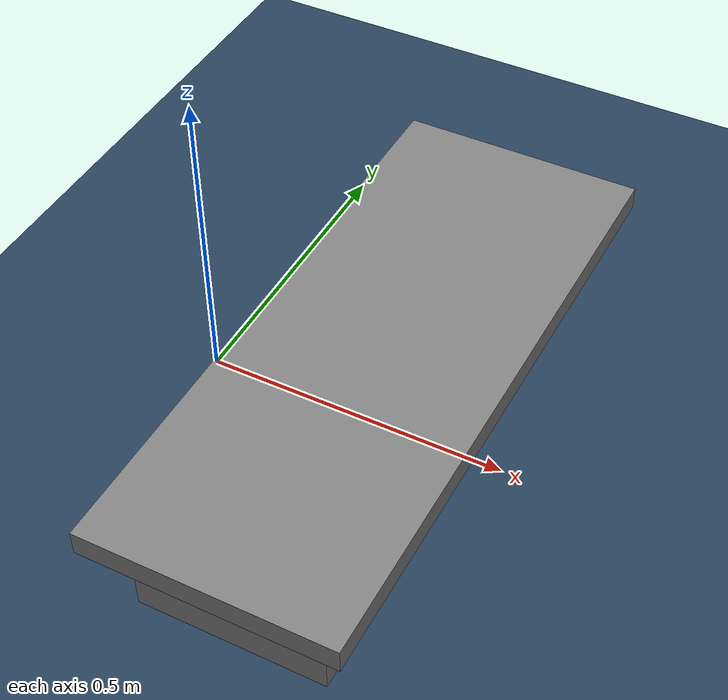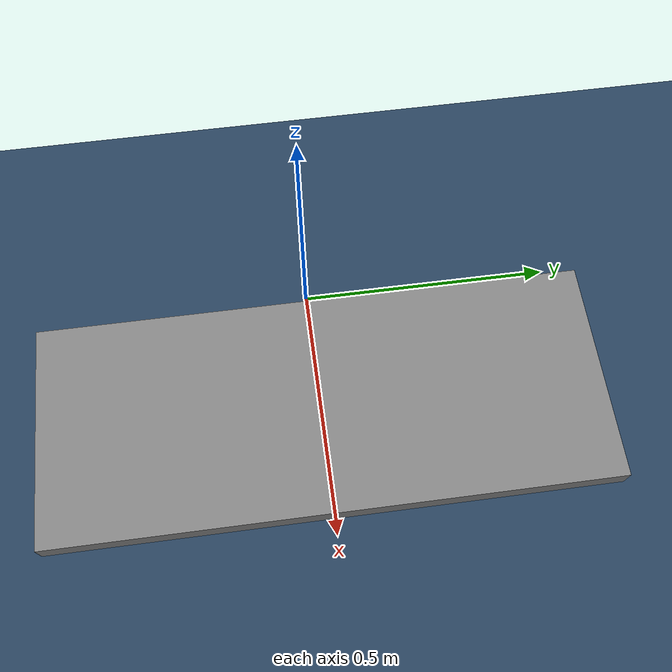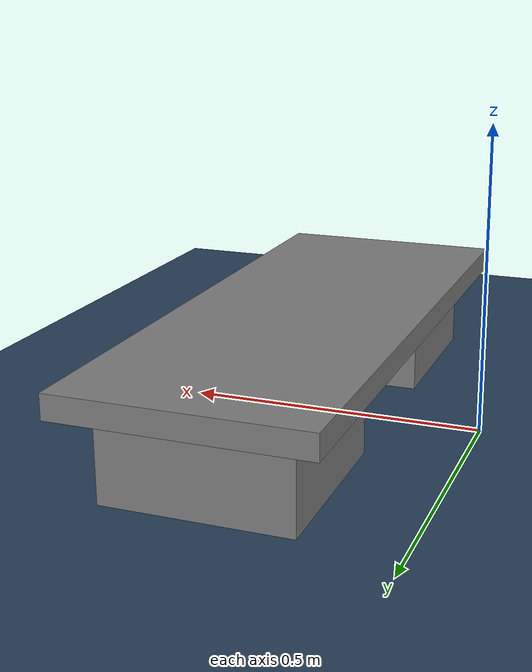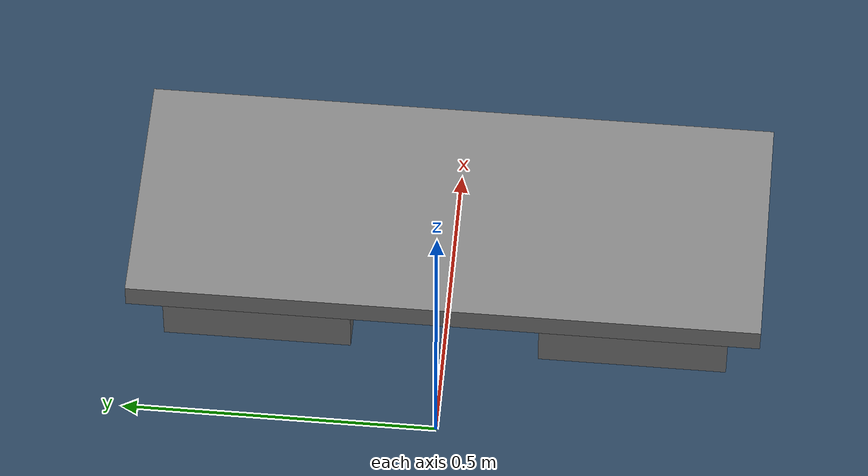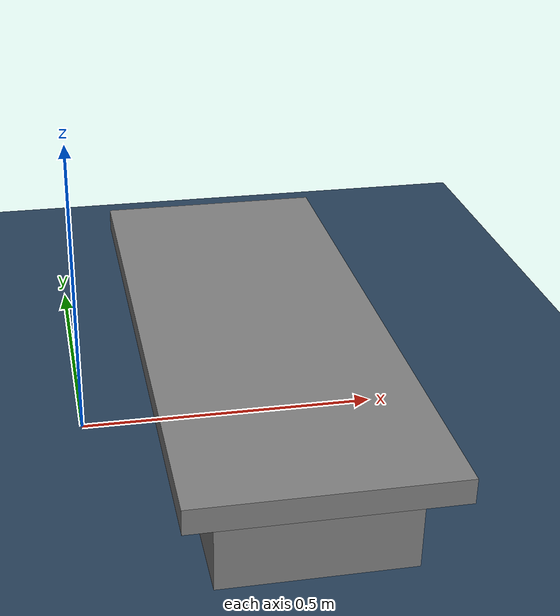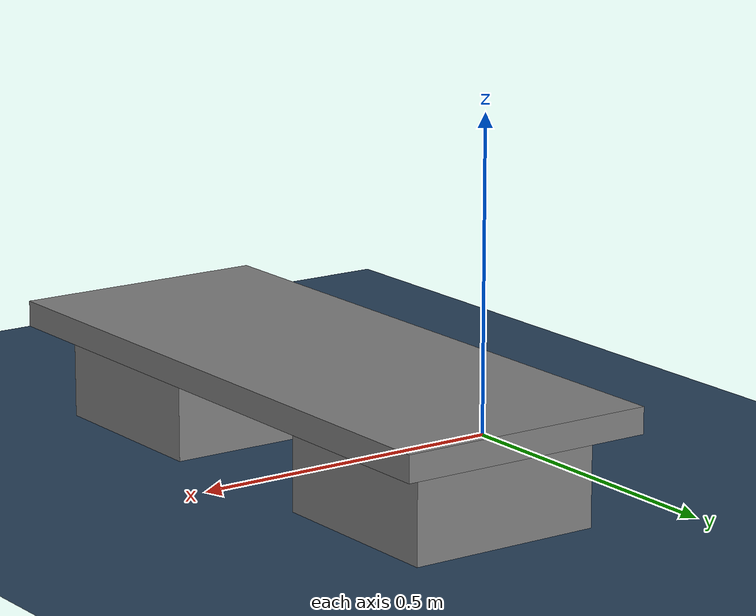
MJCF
<mujoco model="arena">
  <visual>
    <global azimuth="180" elevation="-22.5" />
  </visual>
  <asset>
    <texture name="skybox" type="skybox" builtin="gradient" rgb1=".4 .6 .8" rgb2="0 0 0"
            width="800" height="800" mark="random" markrgb="1 1 1"/>
    <texture name="grid" type="2d" builtin="checker" rgb1=".1 .2 .3" rgb2=".2 .3 .4" width="300" height="300" mark="edge" markrgb=".2 .3 .4"/>
    <material name="grid" texture="grid" texrepeat="1 1" texuniform="true" reflectance=".2"/>
  </asset>
  <visual>
    <headlight ambient=".4 .4 .4" diffuse=".8 .8 .8" specular="0.1 0.1 0.1"/>
    <map znear=".01"/>
    <quality shadowsize="2048"/>
  </visual>
  <default>
    <geom solimp="0.9 0.95 0.001 0.5 2" solref="0.005 1" condim="6" />
  </default>
  <worldbody>
    <geom name="floor" type="plane" size="2 2 2" conaffinity="1" material="grid"/>
    <light directional='true' diffuse='.7 .7 .7' pos='1 .1 2' dir='0 -.1 -2' specular='.3 .3 .3' castshadow='true'/>
    <body>
      <geom type="box" name="table_top" pos=".3 0 0.16" size=".2 .5 0.02" solref="0.2 1" /> <!-- surface at 0.16m + 0.02m = 0.18m -->
      <geom type="box" name="table_column_a" pos=".3 .3 0.07 " size=".15 .15 0.07" />
      <geom type="box" name="table_column_b" pos=".3 -.3 0.07 " size=".15 .15 0.07" />
    </body>
  </worldbody>
</mujoco>
